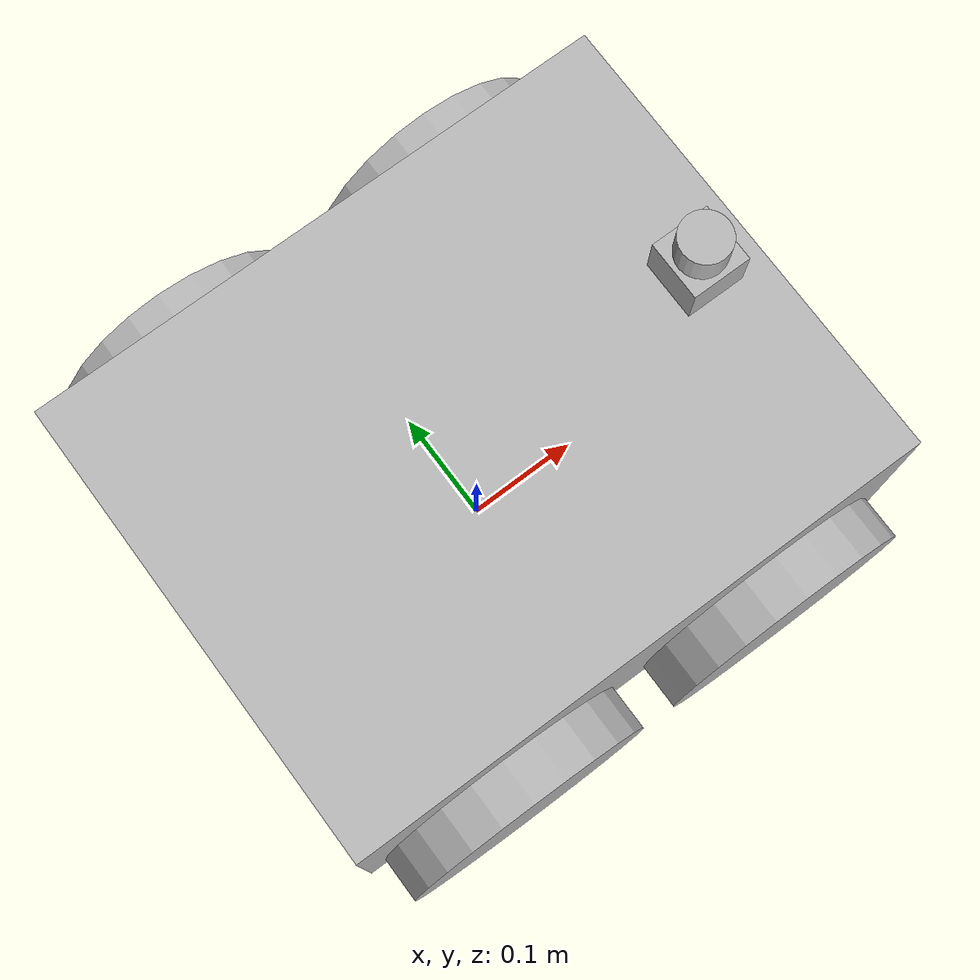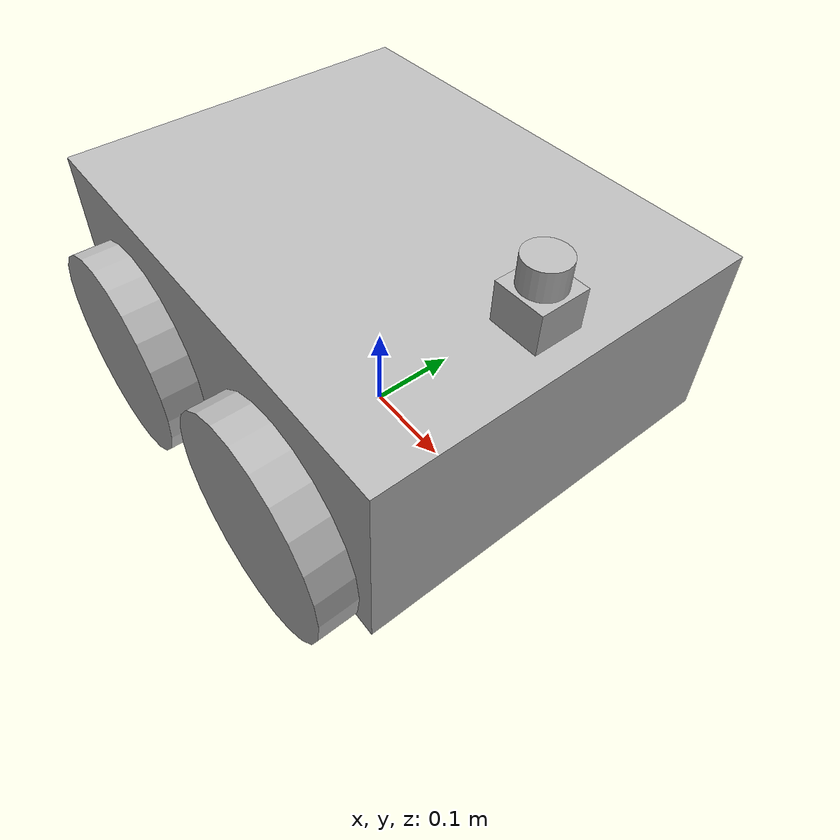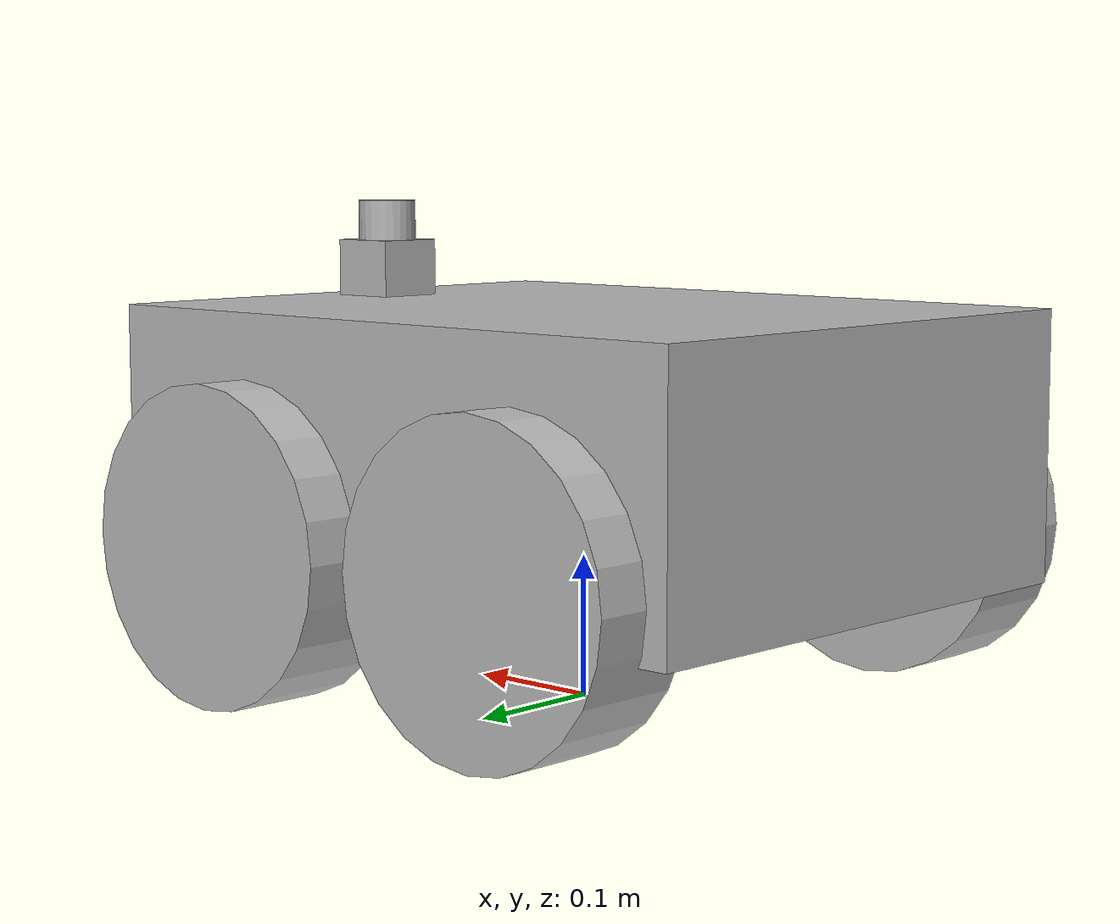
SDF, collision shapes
<?xml version="1.0" ?>
<sdf version="1.5">
  <model name="pioneer3at">
    <pose>0 0 0.180 0 0 0</pose>
    <static>false</static>
    <link name="chassis">
      <inertial>
        <mass>14.0</mass>
        <inertia>
          <ixx>0.3338</ixx>
          <ixy>0.0</ixy>
          <ixz>0.0</ixz>
          <iyy>0.4783</iyy>
          <iyz>0.0</iyz>
          <izz>0.3338</izz>
        </inertia>
      </inertial>
      <collision name="collision">
        <geometry>
          <box>
            <size>0.501 0.400 0.19</size>
          </box>
        </geometry>
      </collision>
      <visual name="visual">
        <geometry>
          <mesh>
            <uri>model://pioneer3at/meshes/chassis.dae</uri>
          </mesh>
        </geometry>
      </visual>
    </link>
    <link name="right_front_wheel">
      <pose>0.125 -0.201 -0.06 1.5707 0 0</pose>
      <collision name="collision">
        <geometry>
          <cylinder>
            <radius>0.110</radius>
            <length>0.075</length>
          </cylinder>
        </geometry>
        <surface>
          <friction>
            <ode>
              <mu>1</mu>
              <mu2>1</mu2>
              <slip1>0.5</slip1>
              <slip2>0</slip2>
            </ode>
          </friction>
        </surface>
      </collision>
      <visual name="visual">
        <geometry>
          <mesh>
            <uri>model://pioneer3at/meshes/wheel.dae</uri>
          </mesh>
        </geometry>
      </visual>
    </link>
    <link name="left_front_wheel">
      <pose>0.125 0.201 -0.06 1.5707 0 0</pose>
      <collision name="collision">
        <geometry>
          <cylinder>
            <radius>0.110</radius>
            <length>0.075</length>
          </cylinder>
        </geometry>
        <surface>
          <friction>
            <ode>
              <mu>1</mu>
              <mu2>1</mu2>
              <slip1>0.5</slip1>
              <slip2>0</slip2>
            </ode>
          </friction>
        </surface>
      </collision>
      <visual name="visual">
        <geometry>
          <mesh>
            <uri>model://pioneer3at/meshes/wheel.dae</uri>
          </mesh>
        </geometry>
      </visual>
    </link>
    <link name="right_rear_wheel">
      <pose>-0.125 -0.201 -0.06 1.5707 0 0</pose>
      <collision name="collision">
        <geometry>
          <cylinder>
            <radius>0.110</radius>
            <length>0.075</length>
          </cylinder>
        </geometry>
        <surface>
          <friction>
            <ode>
              <mu>1</mu>
              <mu2>1</mu2>
              <slip1>0.5</slip1>
              <slip2>0</slip2>
            </ode>
          </friction>
        </surface>
      </collision>
      <visual name="visual">
        <geometry>
          <mesh>
            <uri>model://pioneer3at/meshes/wheel.dae</uri>
          </mesh>
        </geometry>
      </visual>
    </link>
    <link name="left_rear_wheel">
      <pose>-0.125 0.201 -0.06 1.5707 0 0</pose>
      <collision name="collision">
        <geometry>
          <cylinder>
            <radius>0.110</radius>
            <length>0.075</length>
          </cylinder>
        </geometry>
        <surface>
          <friction>
            <ode>
              <mu>1</mu>
              <mu2>1</mu2>
              <slip1>0.5</slip1>
              <slip2>0</slip2>
            </ode>
          </friction>
        </surface>
      </collision>
      <visual name="visual">
        <geometry>
          <mesh>
            <uri>model://pioneer3at/meshes/wheel.dae</uri>
          </mesh>
        </geometry>
      </visual>
    </link>
    <joint type="revolute" name="right_front">
      <pose>0 0 0 0 0 0</pose>
      <child>right_front_wheel</child>
      <parent>chassis</parent>
      <axis>
        <xyz>0 1 0</xyz>
        <use_parent_model_frame>true</use_parent_model_frame>
      </axis>
    </joint>
    <joint type="revolute" name="right_rear">
      <pose>0 0 0 0 0 0</pose>
      <child>right_rear_wheel</child>
      <parent>chassis</parent>
      <axis>
        <xyz>0 1 0</xyz>
        <use_parent_model_frame>true</use_parent_model_frame>
      </axis>
    </joint>
    <joint type="revolute" name="left_front">
      <pose>0 0 0 0 0 0</pose>
      <child>left_front_wheel</child>
      <parent>chassis</parent>
      <axis>
        <xyz>0 1 0</xyz>
        <use_parent_model_frame>true</use_parent_model_frame>
      </axis>
    </joint>
    <joint type="revolute" name="left_rear">
      <pose>0 0 0 0 0 0</pose>
      <child>left_rear_wheel</child>
      <parent>chassis</parent>
      <axis>
        <xyz>0 1 0</xyz>
        <use_parent_model_frame>true</use_parent_model_frame>
      </axis>
    </joint>
    <plugin name="SkidSteerDrivePlugin" filename="libSkidSteerDrivePlugin.so">
      <right_front>right_front</right_front>
      <right_rear>right_rear</right_rear>
      <left_front>left_front</left_front>
      <left_rear>left_rear</left_rear>
      <MaxForce>5.0</MaxForce>
    </plugin>

      <include>
        <uri>model://hokuyo</uri>
        <pose>0.2 0 0.13 0 0 0</pose>
      </include>
      <joint name="hokuyo_joint" type="revolute">
        <child>hokuyo::link</child>
        <parent>chassis</parent>
        <axis>
          <xyz>0 0 1</xyz>
          <limit>
            <upper>0</upper>
            <lower>0</lower>
          </limit>
        </axis>
      </joint>

    <plugin name="SkidSteerDrivePlugin" filename="libSkidSteerDrivePlugin.so" />

  </model>
</sdf>

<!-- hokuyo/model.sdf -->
<sdf version="1.5">
  <model name="hokuyo">
    <pose>0 0 0.035 0 0 0</pose>
    <link name="link">
      <inertial>
        <mass>0.1</mass>
      </inertial>
      <visual name="visual">
        <geometry>
          <mesh>
            <uri>model://hokuyo/meshes/hokuyo.dae</uri>
          </mesh>
        </geometry>
      </visual>
      <collision name="collision-base">
        <pose>0 0 -0.0145 0 0 0</pose>
        <geometry>
          <box>
            <size>0.05 0.05 0.041</size>
          </box>
        </geometry>
      </collision>
      <collision name="collision-top">
        <pose>0 0 0.0205 0 0 0</pose>
        <geometry>
          <cylinder>
            <radius>0.021</radius>
            <length>0.029</length>
          </cylinder>
        </geometry>
      </collision>
      <sensor name="laser" type="ray">
        <pose>0 0 0 0 0 0</pose>
        <ray>
          <scan>
            <horizontal>
		<!-- The URG-04LX-UG01  has  683 steps with 0.35139 Degree resolution -->
              <resolution>1</resolution>
              <max_angle>2.0944</max_angle> <!-- 120 Degree -->
              <min_angle>-2.0944</min_angle> <!-- -120 Degree -->
              <samples>683</samples>
            </horizontal>
          </scan>
          <range>
            <min>0.02</min>
            <max>4</max>
            <resolution>0.01</resolution>
          </range>
        </ray>
        <plugin name="laser" filename="libRayPlugin.so" />
        <always_on>1</always_on>
        <update_rate>10</update_rate>
        <visualize>true</visualize>
      </sensor>
    </link>
  </model>
</sdf>
